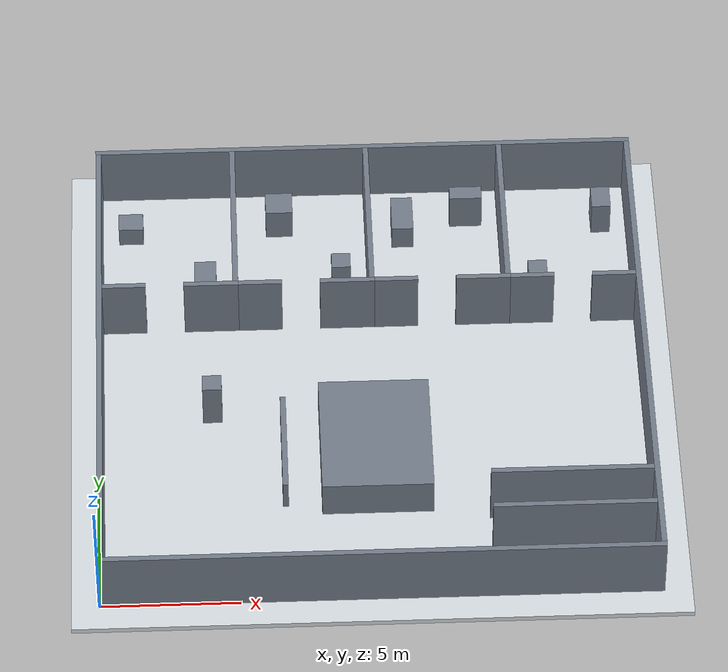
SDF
<?xml version='1.0' encoding='utf-8'?>
<!-- 主办方固定 20 米乘 20 米物理场景；模型坐标供仿真与独立验收，考生导航应只使用传感器建图。 -->
<sdf version="1.6">
  <world name="fixed_exam_20m">
    <gravity>0 0 -9.81</gravity>
    <physics name="default_physics" type="ode">
      <max_step_size>0.002</max_step_size>
      <real_time_update_rate>500</real_time_update_rate>
    </physics>
    <light name="sun" type="directional">
      <pose>0 0 15 0 0 0</pose>
      <diffuse>0.8 0.8 0.8 1</diffuse>
      <direction>-0.3 -0.4 -1</direction>
    </light>
    <!-- 地面模型 floor；后续 pose 和 size 使用米及弧度。 -->
    <model name="floor">
      <static>true</static>
      <pose>10.0 10.0 -0.1 0 0 0</pose>
      <link name="link">
        <collision name="collision">
          <geometry>
            <box>
              <size>22 22 0.2</size>
            </box>
          </geometry>
        </collision>
        <visual name="visual">
          <geometry>
            <box>
              <size>22 22 0.2</size>
            </box>
          </geometry>
          <material>
            <ambient>0.85 0.87 0.89 1</ambient>
            <diffuse>0.85 0.87 0.89 1</diffuse>
          </material>
        </visual>
      </link>
    </model>
    <!-- 边界墙体 outer_s；后续 pose 和 size 使用米及弧度。 -->
    <model name="outer_s">
      <static>true</static>
      <pose>10.0 0.1 1.25 0 0 0</pose>
      <link name="link">
        <collision name="collision">
          <geometry>
            <box>
              <size>20 0.2 2.5</size>
            </box>
          </geometry>
        </collision>
        <visual name="visual">
          <geometry>
            <box>
              <size>20 0.2 2.5</size>
            </box>
          </geometry>
          <material>
            <ambient>0.45 0.49 0.54 1</ambient>
            <diffuse>0.45 0.49 0.54 1</diffuse>
          </material>
        </visual>
      </link>
    </model>
    <!-- 边界墙体 outer_n；后续 pose 和 size 使用米及弧度。 -->
    <model name="outer_n">
      <static>true</static>
      <pose>10.0 19.9 1.25 0 0 0</pose>
      <link name="link">
        <collision name="collision">
          <geometry>
            <box>
              <size>20 0.1999999999999993 2.5</size>
            </box>
          </geometry>
        </collision>
        <visual name="visual">
          <geometry>
            <box>
              <size>20 0.1999999999999993 2.5</size>
            </box>
          </geometry>
          <material>
            <ambient>0.45 0.49 0.54 1</ambient>
            <diffuse>0.45 0.49 0.54 1</diffuse>
          </material>
        </visual>
      </link>
    </model>
    <!-- 边界墙体 outer_w；后续 pose 和 size 使用米及弧度。 -->
    <model name="outer_w">
      <static>true</static>
      <pose>0.1 10.0 1.25 0 0 0</pose>
      <link name="link">
        <collision name="collision">
          <geometry>
            <box>
              <size>0.2 19.6 2.5</size>
            </box>
          </geometry>
        </collision>
        <visual name="visual">
          <geometry>
            <box>
              <size>0.2 19.6 2.5</size>
            </box>
          </geometry>
          <material>
            <ambient>0.45 0.49 0.54 1</ambient>
            <diffuse>0.45 0.49 0.54 1</diffuse>
          </material>
        </visual>
      </link>
    </model>
    <!-- 边界墙体 outer_e；后续 pose 和 size 使用米及弧度。 -->
    <model name="outer_e">
      <static>true</static>
      <pose>19.9 10.0 1.25 0 0 0</pose>
      <link name="link">
        <collision name="collision">
          <geometry>
            <box>
              <size>0.1999999999999993 19.6 2.5</size>
            </box>
          </geometry>
        </collision>
        <visual name="visual">
          <geometry>
            <box>
              <size>0.1999999999999993 19.6 2.5</size>
            </box>
          </geometry>
          <material>
            <ambient>0.45 0.49 0.54 1</ambient>
            <diffuse>0.45 0.49 0.54 1</diffuse>
          </material>
        </visual>
      </link>
    </model>
    <!-- 房间墙体 room_sep_1；后续 pose 和 size 使用米及弧度。 -->
    <model name="room_sep_1">
      <static>true</static>
      <pose>5.1 16.5 1.25 0 0 0</pose>
      <link name="link">
        <collision name="collision">
          <geometry>
            <box>
              <size>0.20000000000000018 6.600000000000001 2.5</size>
            </box>
          </geometry>
        </collision>
        <visual name="visual">
          <geometry>
            <box>
              <size>0.20000000000000018 6.600000000000001 2.5</size>
            </box>
          </geometry>
          <material>
            <ambient>0.45 0.49 0.54 1</ambient>
            <diffuse>0.45 0.49 0.54 1</diffuse>
          </material>
        </visual>
      </link>
    </model>
    <!-- 房间墙体 room_sep_2；后续 pose 和 size 使用米及弧度。 -->
    <model name="room_sep_2">
      <static>true</static>
      <pose>10.1 16.5 1.25 0 0 0</pose>
      <link name="link">
        <collision name="collision">
          <geometry>
            <box>
              <size>0.1999999999999993 6.600000000000001 2.5</size>
            </box>
          </geometry>
        </collision>
        <visual name="visual">
          <geometry>
            <box>
              <size>0.1999999999999993 6.600000000000001 2.5</size>
            </box>
          </geometry>
          <material>
            <ambient>0.45 0.49 0.54 1</ambient>
            <diffuse>0.45 0.49 0.54 1</diffuse>
          </material>
        </visual>
      </link>
    </model>
    <!-- 房间墙体 room_sep_3；后续 pose 和 size 使用米及弧度。 -->
    <model name="room_sep_3">
      <static>true</static>
      <pose>15.1 16.5 1.25 0 0 0</pose>
      <link name="link">
        <collision name="collision">
          <geometry>
            <box>
              <size>0.1999999999999993 6.600000000000001 2.5</size>
            </box>
          </geometry>
        </collision>
        <visual name="visual">
          <geometry>
            <box>
              <size>0.1999999999999993 6.600000000000001 2.5</size>
            </box>
          </geometry>
          <material>
            <ambient>0.45 0.49 0.54 1</ambient>
            <diffuse>0.45 0.49 0.54 1</diffuse>
          </material>
        </visual>
      </link>
    </model>
    <!-- 房间墙体 room_a_front_l；后续 pose 和 size 使用米及弧度。 -->
    <model name="room_a_front_l">
      <static>true</static>
      <pose>1.0 13.1 1.25 0 0 0</pose>
      <link name="link">
        <collision name="collision">
          <geometry>
            <box>
              <size>1.6 0.1999999999999993 2.5</size>
            </box>
          </geometry>
        </collision>
        <visual name="visual">
          <geometry>
            <box>
              <size>1.6 0.1999999999999993 2.5</size>
            </box>
          </geometry>
          <material>
            <ambient>0.45 0.49 0.54 1</ambient>
            <diffuse>0.45 0.49 0.54 1</diffuse>
          </material>
        </visual>
      </link>
    </model>
    <!-- 房间墙体 room_a_front_r；后续 pose 和 size 使用米及弧度。 -->
    <model name="room_a_front_r">
      <static>true</static>
      <pose>4.2 13.1 1.25 0 0 0</pose>
      <link name="link">
        <collision name="collision">
          <geometry>
            <box>
              <size>2.0 0.1999999999999993 2.5</size>
            </box>
          </geometry>
        </collision>
        <visual name="visual">
          <geometry>
            <box>
              <size>2.0 0.1999999999999993 2.5</size>
            </box>
          </geometry>
          <material>
            <ambient>0.45 0.49 0.54 1</ambient>
            <diffuse>0.45 0.49 0.54 1</diffuse>
          </material>
        </visual>
      </link>
    </model>
    <!-- 房间墙体 room_b_front_l；后续 pose 和 size 使用米及弧度。 -->
    <model name="room_b_front_l">
      <static>true</static>
      <pose>6.0 13.1 1.25 0 0 0</pose>
      <link name="link">
        <collision name="collision">
          <geometry>
            <box>
              <size>1.5999999999999996 0.1999999999999993 2.5</size>
            </box>
          </geometry>
        </collision>
        <visual name="visual">
          <geometry>
            <box>
              <size>1.5999999999999996 0.1999999999999993 2.5</size>
            </box>
          </geometry>
          <material>
            <ambient>0.45 0.49 0.54 1</ambient>
            <diffuse>0.45 0.49 0.54 1</diffuse>
          </material>
        </visual>
      </link>
    </model>
    <!-- 房间墙体 room_b_front_r；后续 pose 和 size 使用米及弧度。 -->
    <model name="room_b_front_r">
      <static>true</static>
      <pose>9.2 13.1 1.25 0 0 0</pose>
      <link name="link">
        <collision name="collision">
          <geometry>
            <box>
              <size>2.0 0.1999999999999993 2.5</size>
            </box>
          </geometry>
        </collision>
        <visual name="visual">
          <geometry>
            <box>
              <size>2.0 0.1999999999999993 2.5</size>
            </box>
          </geometry>
          <material>
            <ambient>0.45 0.49 0.54 1</ambient>
            <diffuse>0.45 0.49 0.54 1</diffuse>
          </material>
        </visual>
      </link>
    </model>
    <!-- 房间墙体 room_c_front_l；后续 pose 和 size 使用米及弧度。 -->
    <model name="room_c_front_l">
      <static>true</static>
      <pose>11.0 13.1 1.25 0 0 0</pose>
      <link name="link">
        <collision name="collision">
          <geometry>
            <box>
              <size>1.6000000000000014 0.1999999999999993 2.5</size>
            </box>
          </geometry>
        </collision>
        <visual name="visual">
          <geometry>
            <box>
              <size>1.6000000000000014 0.1999999999999993 2.5</size>
            </box>
          </geometry>
          <material>
            <ambient>0.45 0.49 0.54 1</ambient>
            <diffuse>0.45 0.49 0.54 1</diffuse>
          </material>
        </visual>
      </link>
    </model>
    <!-- 房间墙体 room_c_front_r；后续 pose 和 size 使用米及弧度。 -->
    <model name="room_c_front_r">
      <static>true</static>
      <pose>14.2 13.1 1.25 0 0 0</pose>
      <link name="link">
        <collision name="collision">
          <geometry>
            <box>
              <size>2.0 0.1999999999999993 2.5</size>
            </box>
          </geometry>
        </collision>
        <visual name="visual">
          <geometry>
            <box>
              <size>2.0 0.1999999999999993 2.5</size>
            </box>
          </geometry>
          <material>
            <ambient>0.45 0.49 0.54 1</ambient>
            <diffuse>0.45 0.49 0.54 1</diffuse>
          </material>
        </visual>
      </link>
    </model>
    <!-- 房间墙体 room_d_front_l；后续 pose 和 size 使用米及弧度。 -->
    <model name="room_d_front_l">
      <static>true</static>
      <pose>16.0 13.1 1.25 0 0 0</pose>
      <link name="link">
        <collision name="collision">
          <geometry>
            <box>
              <size>1.6000000000000014 0.1999999999999993 2.5</size>
            </box>
          </geometry>
        </collision>
        <visual name="visual">
          <geometry>
            <box>
              <size>1.6000000000000014 0.1999999999999993 2.5</size>
            </box>
          </geometry>
          <material>
            <ambient>0.45 0.49 0.54 1</ambient>
            <diffuse>0.45 0.49 0.54 1</diffuse>
          </material>
        </visual>
      </link>
    </model>
    <!-- 房间墙体 room_d_front_r；后续 pose 和 size 使用米及弧度。 -->
    <model name="room_d_front_r">
      <static>true</static>
      <pose>19.0 13.1 1.25 0 0 0</pose>
      <link name="link">
        <collision name="collision">
          <geometry>
            <box>
              <size>1.6000000000000014 0.1999999999999993 2.5</size>
            </box>
          </geometry>
        </collision>
        <visual name="visual">
          <geometry>
            <box>
              <size>1.6000000000000014 0.1999999999999993 2.5</size>
            </box>
          </geometry>
          <material>
            <ambient>0.45 0.49 0.54 1</ambient>
            <diffuse>0.45 0.49 0.54 1</diffuse>
          </material>
        </visual>
      </link>
    </model>
    <!-- 固定障碍或挡板 central_island；后续 pose 和 size 使用米及弧度。 -->
    <model name="central_island">
      <static>true</static>
      <pose>10.0 6.5 0.75 0 0 0</pose>
      <link name="link">
        <collision name="collision">
          <geometry>
            <box>
              <size>4 5 1.5</size>
            </box>
          </geometry>
        </collision>
        <visual name="visual">
          <geometry>
            <box>
              <size>4 5 1.5</size>
            </box>
          </geometry>
          <material>
            <ambient>0.45 0.49 0.54 1</ambient>
            <diffuse>0.45 0.49 0.54 1</diffuse>
          </material>
        </visual>
      </link>
    </model>
    <!-- 固定障碍或挡板 narrow_baffle；后续 pose 和 size 使用米及弧度。 -->
    <model name="narrow_baffle">
      <static>true</static>
      <pose>6.699999999999999 6.5 0.6 0 0 0</pose>
      <link name="link">
        <collision name="collision">
          <geometry>
            <box>
              <size>0.20000000000000018 4.199999999999999 1.2</size>
            </box>
          </geometry>
        </collision>
        <visual name="visual">
          <geometry>
            <box>
              <size>0.20000000000000018 4.199999999999999 1.2</size>
            </box>
          </geometry>
          <material>
            <ambient>0.45 0.49 0.54 1</ambient>
            <diffuse>0.45 0.49 0.54 1</diffuse>
          </material>
        </visual>
      </link>
    </model>
    <!-- 固定障碍或挡板 dead_end_s；后续 pose 和 size 使用米及弧度。 -->
    <model name="dead_end_s">
      <static>true</static>
      <pose>16.9 2.1 1.25 0 0 0</pose>
      <link name="link">
        <collision name="collision">
          <geometry>
            <box>
              <size>5.800000000000001 0.20000000000000018 2.5</size>
            </box>
          </geometry>
        </collision>
        <visual name="visual">
          <geometry>
            <box>
              <size>5.800000000000001 0.20000000000000018 2.5</size>
            </box>
          </geometry>
          <material>
            <ambient>0.45 0.49 0.54 1</ambient>
            <diffuse>0.45 0.49 0.54 1</diffuse>
          </material>
        </visual>
      </link>
    </model>
    <!-- 固定障碍或挡板 dead_end_n；后续 pose 和 size 使用米及弧度。 -->
    <model name="dead_end_n">
      <static>true</static>
      <pose>16.9 3.7 1.25 0 0 0</pose>
      <link name="link">
        <collision name="collision">
          <geometry>
            <box>
              <size>5.800000000000001 0.19999999999999973 2.5</size>
            </box>
          </geometry>
        </collision>
        <visual name="visual">
          <geometry>
            <box>
              <size>5.800000000000001 0.19999999999999973 2.5</size>
            </box>
          </geometry>
          <material>
            <ambient>0.45 0.49 0.54 1</ambient>
            <diffuse>0.45 0.49 0.54 1</diffuse>
          </material>
        </visual>
      </link>
    </model>
    <!-- 固定障碍或挡板 obstacle_a1；后续 pose 和 size 使用米及弧度。 -->
    <model name="obstacle_a1">
      <static>true</static>
      <pose>1.25 17.9 0.4 0 0 0</pose>
      <link name="link">
        <collision name="collision">
          <geometry>
            <box>
              <size>0.8999999999999999 0.8000000000000007 0.8</size>
            </box>
          </geometry>
        </collision>
        <visual name="visual">
          <geometry>
            <box>
              <size>0.8999999999999999 0.8000000000000007 0.8</size>
            </box>
          </geometry>
          <material>
            <ambient>0.45 0.49 0.54 1</ambient>
            <diffuse>0.45 0.49 0.54 1</diffuse>
          </material>
        </visual>
      </link>
    </model>
    <!-- 固定障碍或挡板 obstacle_a2；后续 pose 和 size 使用米及弧度。 -->
    <model name="obstacle_a2">
      <static>true</static>
      <pose>4.0 14.850000000000001 0.6 0 0 0</pose>
      <link name="link">
        <collision name="collision">
          <geometry>
            <box>
              <size>0.8000000000000003 1.0999999999999996 1.2</size>
            </box>
          </geometry>
        </collision>
        <visual name="visual">
          <geometry>
            <box>
              <size>0.8000000000000003 1.0999999999999996 1.2</size>
            </box>
          </geometry>
          <material>
            <ambient>0.45 0.49 0.54 1</ambient>
            <diffuse>0.45 0.49 0.54 1</diffuse>
          </material>
        </visual>
      </link>
    </model>
    <!-- 固定障碍或挡板 obstacle_b1；后续 pose 和 size 使用米及弧度。 -->
    <model name="obstacle_b1">
      <static>true</static>
      <pose>6.8 18.2 0.65 0 0 0</pose>
      <link name="link">
        <collision name="collision">
          <geometry>
            <box>
              <size>1.0 1.0 1.3</size>
            </box>
          </geometry>
        </collision>
        <visual name="visual">
          <geometry>
            <box>
              <size>1.0 1.0 1.3</size>
            </box>
          </geometry>
          <material>
            <ambient>0.45 0.49 0.54 1</ambient>
            <diffuse>0.45 0.49 0.54 1</diffuse>
          </material>
        </visual>
      </link>
    </model>
    <!-- 固定障碍或挡板 obstacle_b2；后续 pose 和 size 使用米及弧度。 -->
    <model name="obstacle_b2">
      <static>true</static>
      <pose>9.05 15.85 0.3 0 0 0</pose>
      <link name="link">
        <collision name="collision">
          <geometry>
            <box>
              <size>0.7000000000000011 0.6999999999999993 0.6</size>
            </box>
          </geometry>
        </collision>
        <visual name="visual">
          <geometry>
            <box>
              <size>0.7000000000000011 0.6999999999999993 0.6</size>
            </box>
          </geometry>
          <material>
            <ambient>0.45 0.49 0.54 1</ambient>
            <diffuse>0.45 0.49 0.54 1</diffuse>
          </material>
        </visual>
      </link>
    </model>
    <!-- 固定障碍或挡板 obstacle_c1；后续 pose 和 size 使用米及弧度。 -->
    <model name="obstacle_c1">
      <static>true</static>
      <pose>11.4 17.8 0.5 0 0 0</pose>
      <link name="link">
        <collision name="collision">
          <geometry>
            <box>
              <size>0.8000000000000007 1.6000000000000014 1</size>
            </box>
          </geometry>
        </collision>
        <visual name="visual">
          <geometry>
            <box>
              <size>0.8000000000000007 1.6000000000000014 1</size>
            </box>
          </geometry>
          <material>
            <ambient>0.45 0.49 0.54 1</ambient>
            <diffuse>0.45 0.49 0.54 1</diffuse>
          </material>
        </visual>
      </link>
    </model>
    <!-- 固定障碍或挡板 obstacle_c2；后续 pose 和 size 使用米及弧度。 -->
    <model name="obstacle_c2">
      <static>true</static>
      <pose>13.8 18.3 0.75 0 0 0</pose>
      <link name="link">
        <collision name="collision">
          <geometry>
            <box>
              <size>1.200000000000001 0.6000000000000014 1.5</size>
            </box>
          </geometry>
        </collision>
        <visual name="visual">
          <geometry>
            <box>
              <size>1.200000000000001 0.6000000000000014 1.5</size>
            </box>
          </geometry>
          <material>
            <ambient>0.45 0.49 0.54 1</ambient>
            <diffuse>0.45 0.49 0.54 1</diffuse>
          </material>
        </visual>
      </link>
    </model>
    <!-- 固定障碍或挡板 obstacle_d1；后续 pose 和 size 使用米及弧度。 -->
    <model name="obstacle_d1">
      <static>true</static>
      <pose>16.35 15.0 0.35 0 0 0</pose>
      <link name="link">
        <collision name="collision">
          <geometry>
            <box>
              <size>0.6999999999999993 1.0 0.7</size>
            </box>
          </geometry>
        </collision>
        <visual name="visual">
          <geometry>
            <box>
              <size>0.6999999999999993 1.0 0.7</size>
            </box>
          </geometry>
          <material>
            <ambient>0.45 0.49 0.54 1</ambient>
            <diffuse>0.45 0.49 0.54 1</diffuse>
          </material>
        </visual>
      </link>
    </model>
    <!-- 固定障碍或挡板 obstacle_d2；后续 pose 和 size 使用米及弧度。 -->
    <model name="obstacle_d2">
      <static>true</static>
      <pose>18.85 18.0 0.7 0 0 0</pose>
      <link name="link">
        <collision name="collision">
          <geometry>
            <box>
              <size>0.6999999999999993 1.0 1.4</size>
            </box>
          </geometry>
        </collision>
        <visual name="visual">
          <geometry>
            <box>
              <size>0.6999999999999993 1.0 1.4</size>
            </box>
          </geometry>
          <material>
            <ambient>0.45 0.49 0.54 1</ambient>
            <diffuse>0.45 0.49 0.54 1</diffuse>
          </material>
        </visual>
      </link>
    </model>
    <!-- 固定障碍或挡板 hall_post；后续 pose 和 size 使用米及弧度。 -->
    <model name="hall_post">
      <static>true</static>
      <pose>4.15 8.85 0.9 0 0 0</pose>
      <link name="link">
        <collision name="collision">
          <geometry>
            <box>
              <size>0.7000000000000002 0.6999999999999993 1.8</size>
            </box>
          </geometry>
        </collision>
        <visual name="visual">
          <geometry>
            <box>
              <size>0.7000000000000002 0.6999999999999993 1.8</size>
            </box>
          </geometry>
          <material>
            <ambient>0.45 0.49 0.54 1</ambient>
            <diffuse>0.45 0.49 0.54 1</diffuse>
          </material>
        </visual>
      </link>
    </model>
  </world>
</sdf>
